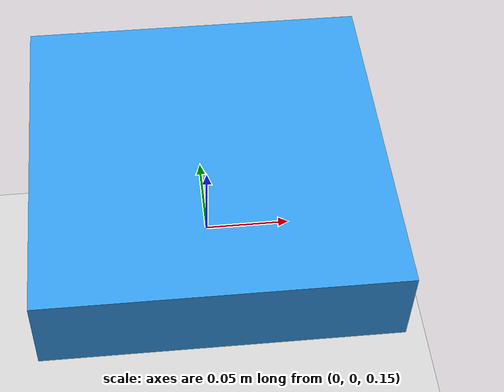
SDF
<?xml version="1.0" ?>
<sdf version="1.6">
  <world name="gps_world">

    <!-- basic helpers -->
    <include>
      <uri>model://sun</uri>
    </include>

    <include>
      <uri>model://ground_plane</uri>
    </include>

    <!-- A simple model that carries a GPS sensor -->
    <model name="gps_robot">
      <pose>0 0 0 0 0 0</pose>
      <static>false</static>

      <link name="base_link">
        <pose>0 0 0.2 0 0 0</pose>

        <!-- inertial (small, ok for simulation) -->
        <inertial>
          <mass>1.0</mass>
          <inertia>
            <ixx>0.01</ixx><iyy>0.01</iyy><izz>0.01</izz>
            <ixy>0</ixy><ixz>0</ixz><iyz>0</iyz>
          </inertia>
        </inertial>

        <!-- Visual element so you can see it -->
        <visual name="body_visual">
          <geometry>
            <box>
              <size>0.2 0.2 0.05</size>
            </box>
          </geometry>
          <material>
            <ambient>0.2 0.6 0.9 1</ambient>
            <diffuse>0.2 0.6 0.9 1</diffuse>
          </material>
        </visual>

        <!-- Collision (optional) -->
        <collision name="body_collision">
          <geometry>
            <box>
              <size>0.2 0.2 0.05</size>
            </box>
          </geometry>
        </collision>

        <!-- GPS sensor attached to this link -->
        <sensor name="gps_sensor" type="gps">
          <always_on>1</always_on>
          <update_rate>5.0</update_rate> <!-- Hz -->
          <pose>0 0 0.15 0 0 0</pose>

          <gps>
            <!-- enable position and velocity readings -->
            <position_sensing>true</position_sensing>
            <velocity_sensing>true</velocity_sensing>

            <!-- noise settings (mean 0, standard deviation in meters) -->
            <horizontal_position_stddev>1.5</horizontal_position_stddev>
            <vertical_position_stddev>2.0</vertical_position_stddev>
            <velocity_stddev>0.2</velocity_stddev>
          </gps>

          <plugin name="gazebo_gps_plugin" filename="libgazebo_gps_plugin.so">
            <!-- topic name that the plugin will publish to (plugin-dependent) -->
            <topicName>/gps</topicName>
            <!-- frame name used in messages -->
            <frameName>gps_link</frameName>
            <!-- optional: advertise as navsatfix-like structure depending on plugin -->
          </plugin>
        </sensor>

      </link>
    </model>

    <!-- Optional: a few lights or world parameters can go here -->
    <physics type="ode">
      <gravity>0 0 -9.81</gravity>
    </physics>

  </world>
</sdf>
